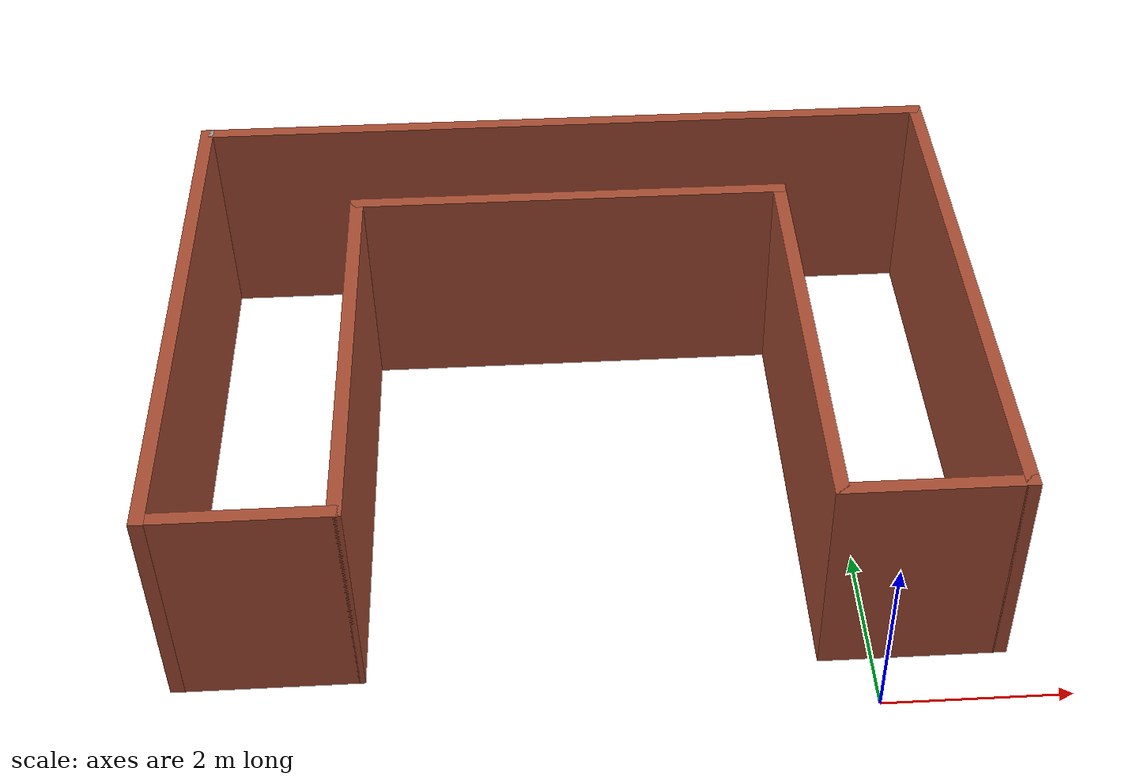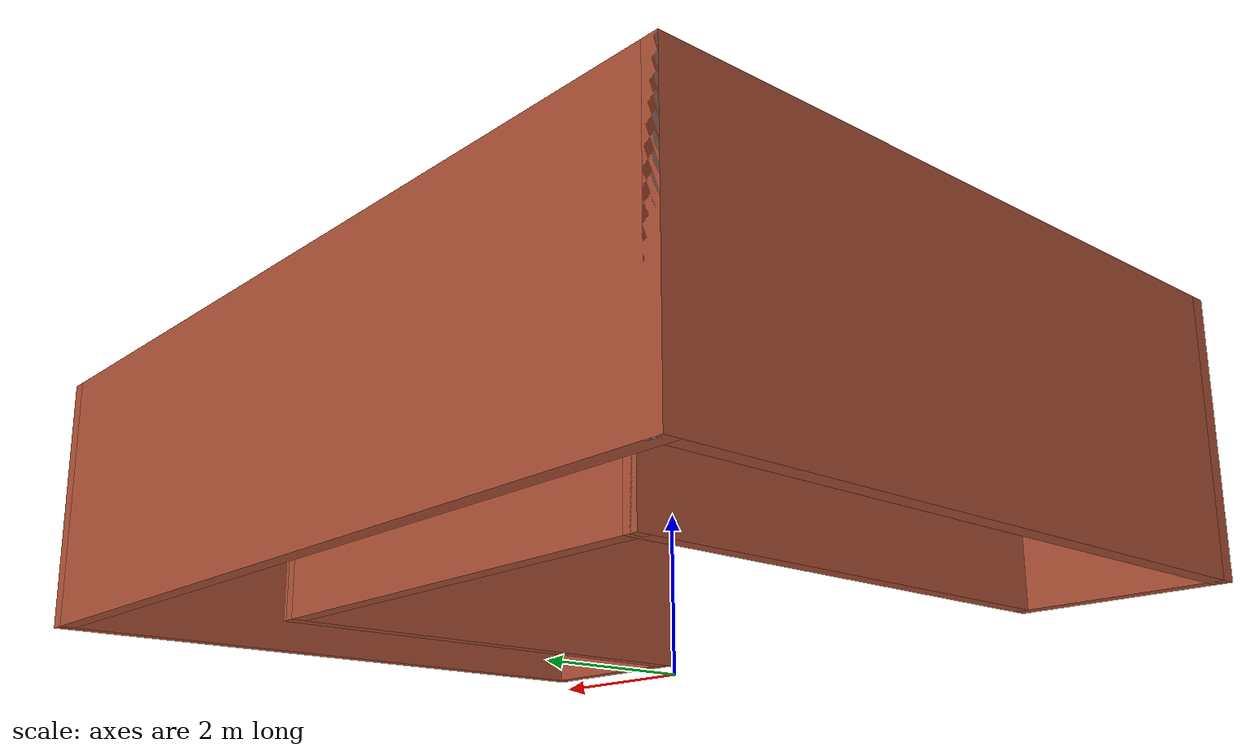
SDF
<?xml version='1.0'?>
<sdf version='1.6'>
  <model name='Untitled'>
    <pose frame=''>-2.9247 3.83738 0 0 -0 0</pose>
    <link name='Wall_12'>
      <collision name='Wall_12_Collision'>
        <geometry>
          <box>
            <size>6.5 0.15 2.5</size>
          </box>
        </geometry>
        <pose frame=''>0 0 1.25 0 -0 0</pose>
      </collision>
      <visual name='Wall_12_Visual'>
        <pose frame=''>0 0 1.25 0 -0 0</pose>
        <geometry>
          <box>
            <size>6.5 0.15 2.5</size>
          </box>
        </geometry>
        <material>
          <script>
            <uri>file://media/materials/scripts/gazebo.material</uri>
            <name>Gazebo/Bricks</name>
          </script>
          <ambient>1 1 1 1</ambient>
        </material>
        <meta>
          <layer>0</layer>
        </meta>
      </visual>
      <pose frame=''>-4.275 0 0 0 -0 1.5708</pose>
    </link>
    <link name='Wall_13'>
      <collision name='Wall_13_Collision'>
        <geometry>
          <box>
            <size>0.15 0.15 2.5</size>
          </box>
        </geometry>
        <pose frame=''>0 0 1.25 0 -0 0</pose>
      </collision>
      <visual name='Wall_13_Visual'>
        <pose frame=''>0 0 1.25 0 -0 0</pose>
        <geometry>
          <box>
            <size>0.15 0.15 2.5</size>
          </box>
        </geometry>
        <material>
          <script>
            <uri>file://media/materials/scripts/gazebo.material</uri>
            <name>Gazebo/Grey</name>
          </script>
          <ambient>1 1 1 1</ambient>
        </material>
        <meta>
          <layer>0</layer>
        </meta>
      </visual>
      <pose frame=''>-4.275 3.175 0 0 -0 0</pose>
    </link>
    <link name='Wall_14'>
      <collision name='Wall_14_Collision'>
        <geometry>
          <box>
            <size>8.7 0.15 2.5</size>
          </box>
        </geometry>
        <pose frame=''>0 0 1.25 0 -0 0</pose>
      </collision>
      <visual name='Wall_14_Visual'>
        <pose frame=''>0 0 1.25 0 -0 0</pose>
        <geometry>
          <box>
            <size>8.7 0.15 2.5</size>
          </box>
        </geometry>
        <material>
          <script>
            <uri>file://media/materials/scripts/gazebo.material</uri>
            <name>Gazebo/Bricks</name>
          </script>
          <ambient>1 1 1 1</ambient>
        </material>
        <meta>
          <layer>0</layer>
        </meta>
      </visual>
      <pose frame=''>0 3.175 0 0 -0 0</pose>
    </link>
    <link name='Wall_2'>
      <collision name='Wall_2_Collision'>
        <geometry>
          <box>
            <size>2 0.15 2.5</size>
          </box>
        </geometry>
        <pose frame=''>0 0 1.25 0 -0 0</pose>
      </collision>
      <visual name='Wall_2_Visual'>
        <pose frame=''>0 0 1.25 0 -0 0</pose>
        <geometry>
          <box>
            <size>2 0.15 2.5</size>
          </box>
        </geometry>
        <material>
          <script>
            <uri>file://media/materials/scripts/gazebo.material</uri>
            <name>Gazebo/Bricks</name>
          </script>
          <ambient>1 1 1 1</ambient>
        </material>
        <meta>
          <layer>0</layer>
        </meta>
      </visual>
      <pose frame=''>-3.35 -3.175 0 0 -0 0</pose>
    </link>
    <link name='Wall_3'>
      <collision name='Wall_3_Collision'>
        <geometry>
          <box>
            <size>5 0.15 2.5</size>
          </box>
        </geometry>
        <pose frame=''>0 0 1.25 0 -0 0</pose>
      </collision>
      <visual name='Wall_3_Visual'>
        <pose frame=''>0 0 1.25 0 -0 0</pose>
        <geometry>
          <box>
            <size>5 0.15 2.5</size>
          </box>
        </geometry>
        <material>
          <script>
            <uri>file://media/materials/scripts/gazebo.material</uri>
            <name>Gazebo/Bricks</name>
          </script>
          <ambient>1 1 1 1</ambient>
        </material>
        <meta>
          <layer>0</layer>
        </meta>
      </visual>
      <pose frame=''>-2.425 -0.75 0 0 -0 1.5708</pose>
    </link>
    <link name='Wall_4'>
      <collision name='Wall_4_Collision'>
        <geometry>
          <box>
            <size>5 0.15 2.5</size>
          </box>
        </geometry>
        <pose frame=''>0 0 1.25 0 -0 0</pose>
      </collision>
      <visual name='Wall_4_Visual'>
        <pose frame=''>0 0 1.25 0 -0 0</pose>
        <geometry>
          <box>
            <size>5 0.15 2.5</size>
          </box>
        </geometry>
        <material>
          <script>
            <uri>file://media/materials/scripts/gazebo.material</uri>
            <name>Gazebo/Bricks</name>
          </script>
          <ambient>1 1 1 1</ambient>
        </material>
        <meta>
          <layer>0</layer>
        </meta>
      </visual>
      <pose frame=''>0 1.675 0 0 -0 0</pose>
    </link>
    <link name='Wall_5'>
      <collision name='Wall_5_Collision'>
        <geometry>
          <box>
            <size>5 0.15 2.5</size>
          </box>
        </geometry>
        <pose frame=''>0 0 1.25 0 -0 0</pose>
      </collision>
      <visual name='Wall_5_Visual'>
        <pose frame=''>0 0 1.25 0 -0 0</pose>
        <geometry>
          <box>
            <size>5 0.15 2.5</size>
          </box>
        </geometry>
        <material>
          <script>
            <uri>file://media/materials/scripts/gazebo.material</uri>
            <name>Gazebo/Bricks</name>
          </script>
          <ambient>1 1 1 1</ambient>
        </material>
        <meta>
          <layer>0</layer>
        </meta>
      </visual>
      <pose frame=''>2.425 -0.75 0 0 0 -1.5708</pose>
    </link>
    <link name='Wall_6'>
      <collision name='Wall_6_Collision'>
        <geometry>
          <box>
            <size>2 0.15 2.5</size>
          </box>
        </geometry>
        <pose frame=''>0 0 1.25 0 -0 0</pose>
      </collision>
      <visual name='Wall_6_Visual'>
        <pose frame=''>0 0 1.25 0 -0 0</pose>
        <geometry>
          <box>
            <size>2 0.15 2.5</size>
          </box>
        </geometry>
        <material>
          <script>
            <uri>file://media/materials/scripts/gazebo.material</uri>
            <name>Gazebo/Bricks</name>
          </script>
          <ambient>1 1 1 1</ambient>
        </material>
        <meta>
          <layer>0</layer>
        </meta>
      </visual>
      <pose frame=''>3.35 -3.175 0 0 -0 0</pose>
    </link>
    <link name='Wall_9'>
      <collision name='Wall_9_Collision'>
        <geometry>
          <box>
            <size>6.5 0.15 2.5</size>
          </box>
        </geometry>
        <pose frame=''>0 0 1.25 0 -0 0</pose>
      </collision>
      <visual name='Wall_9_Visual'>
        <pose frame=''>0 0 1.25 0 -0 0</pose>
        <geometry>
          <box>
            <size>6.5 0.15 2.5</size>
          </box>
        </geometry>
        <material>
          <script>
            <uri>file://media/materials/scripts/gazebo.material</uri>
            <name>Gazebo/Bricks</name>
          </script>
          <ambient>1 1 1 1</ambient>
        </material>
        <meta>
          <layer>0</layer>
        </meta>
      </visual>
      <pose frame=''>4.275 0 0 0 -0 1.5708</pose>
    </link>
    <static>1</static>
  </model>
</sdf>
